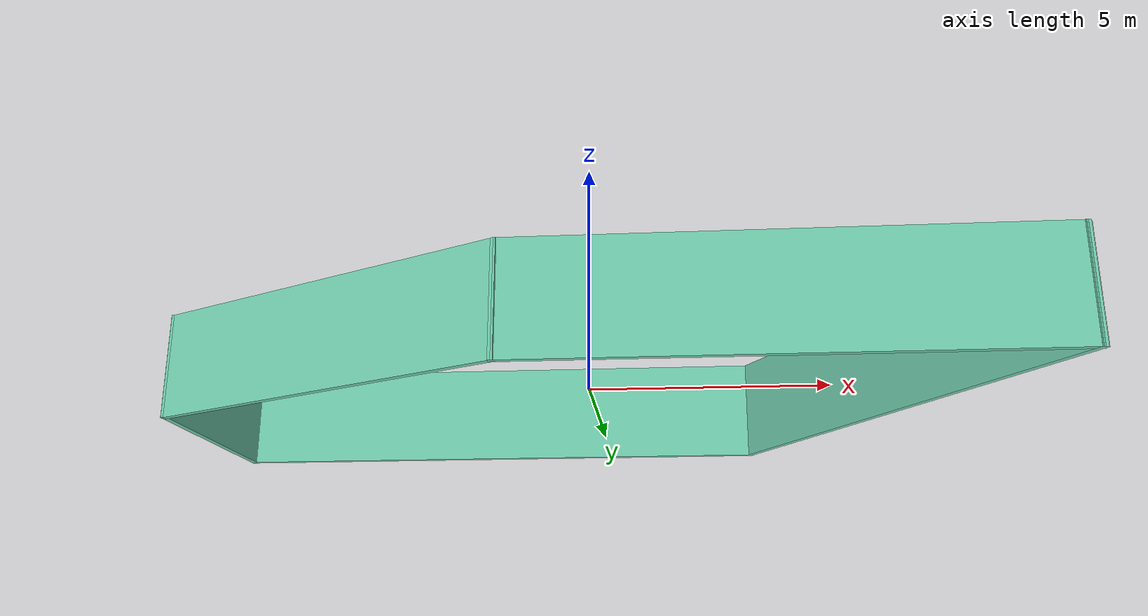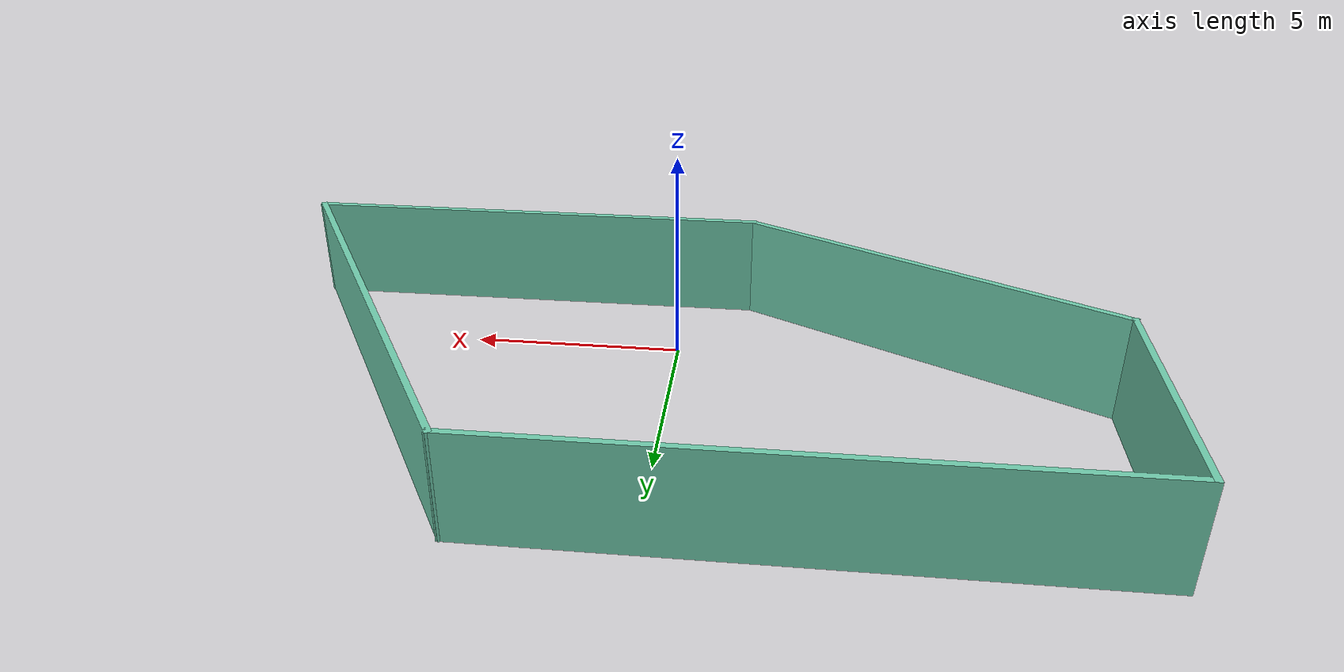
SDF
<?xml version='1.0'?>
<sdf version='1.7'>
  <model name='maze'>
    <pose>-0.216892 2.6712 0 0 -0 0</pose>
    <link name='Wall_0'>
      <collision name='Wall_0_Collision'>
        <geometry>
          <box>
            <size>11.5 0.15 2.5</size>
          </box>
        </geometry>
        <pose>0 0 1.25 0 -0 0</pose>
      </collision>
      <visual name='Wall_0_Visual'>
        <pose>0 0 1.25 0 -0 0</pose>
        <geometry>
          <box>
            <size>11.5 0.15 2.5</size>
          </box>
        </geometry>
        <material>
          <script>
            <uri>file://media/materials/scripts/gazebo.material</uri>
            <name>Gazebo/Grey</name>
          </script>
          <ambient>0.435294 0.796078 0.67451 1</ambient>
        </material>
        <meta>
          <layer>0</layer>
        </meta>
      </visual>
      <pose>4.21189 -5.1312 0 0 -0 0</pose>
    </link>
    <link name='Wall_2'>
      <collision name='Wall_2_Collision'>
        <geometry>
          <box>
            <size>12 0.15 2.5</size>
          </box>
        </geometry>
        <pose>0 0 1.25 0 -0 0</pose>
      </collision>
      <visual name='Wall_2_Visual'>
        <pose>0 0 1.25 0 -0 0</pose>
        <geometry>
          <box>
            <size>12 0.15 2.5</size>
          </box>
        </geometry>
        <material>
          <script>
            <uri>file://media/materials/scripts/gazebo.material</uri>
            <name>Gazebo/Grey</name>
          </script>
          <ambient>0.435294 0.796078 0.67451 1</ambient>
        </material>
        <meta>
          <layer>0</layer>
        </meta>
      </visual>
      <pose>6.92439 -0 0 0 -0 2.0944</pose>
    </link>
    <link name='Wall_3'>
      <collision name='Wall_3_Collision'>
        <geometry>
          <box>
            <size>14 0.15 2.5</size>
          </box>
        </geometry>
        <pose>0 0 1.25 0 -0 0</pose>
      </collision>
      <visual name='Wall_3_Visual'>
        <pose>0 0 1.25 0 -0 0</pose>
        <geometry>
          <box>
            <size>14 0.15 2.5</size>
          </box>
        </geometry>
        <material>
          <script>
            <uri>file://media/materials/scripts/gazebo.material</uri>
            <name>Gazebo/Grey</name>
          </script>
          <ambient>0.435294 0.796078 0.67451 1</ambient>
        </material>
        <meta>
          <layer>0</layer>
        </meta>
      </visual>
      <pose>-2.96311 5.1312 0 0 -0 3.14159</pose>
    </link>
    <link name='Wall_4'>
      <collision name='Wall_4_Collision'>
        <geometry>
          <box>
            <size>6 0.15 2.5</size>
          </box>
        </geometry>
        <pose>0 0 1.25 0 -0 0</pose>
      </collision>
      <visual name='Wall_4_Visual'>
        <pose>0 0 1.25 0 -0 0</pose>
        <geometry>
          <box>
            <size>6 0.15 2.5</size>
          </box>
        </geometry>
        <material>
          <script>
            <uri>file://media/materials/scripts/gazebo.material</uri>
            <name>Gazebo/Grey</name>
          </script>
          <ambient>0.435294 0.796078 0.67451 1</ambient>
        </material>
        <meta>
          <layer>0</layer>
        </meta>
      </visual>
      <pose>-9.88811 2.2062 0 0 -0 -1.5708</pose>
    </link>
    <link name='Wall_5'>
      <collision name='Wall_5_Collision'>
        <geometry>
          <box>
            <size>9.66052 0.15 2.5</size>
          </box>
        </geometry>
        <pose>0 0 1.25 0 -0 0</pose>
      </collision>
      <visual name='Wall_5_Visual'>
        <pose>0 0 1.25 0 -0 0</pose>
        <geometry>
          <box>
            <size>9.66052 0.15 2.5</size>
          </box>
        </geometry>
        <material>
          <script>
            <uri>file://media/materials/scripts/gazebo.material</uri>
            <name>Gazebo/Grey</name>
          </script>
          <ambient>0.435294 0.796078 0.67451 1</ambient>
        </material>
        <meta>
          <layer>0</layer>
        </meta>
      </visual>
      <pose>-5.67561 -2.925 0 0 -0 -0.482449</pose>
    </link>
    <static>1</static>
  </model>
</sdf>
